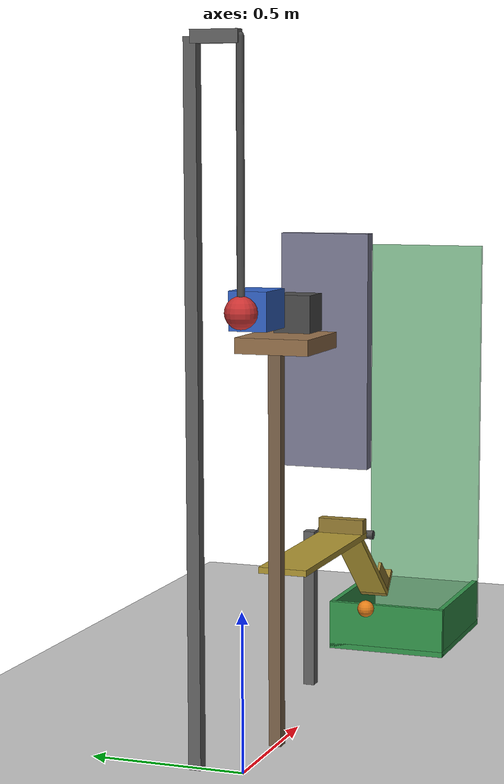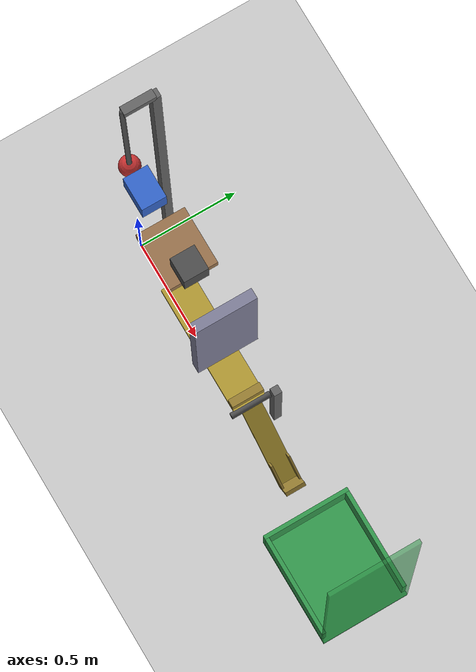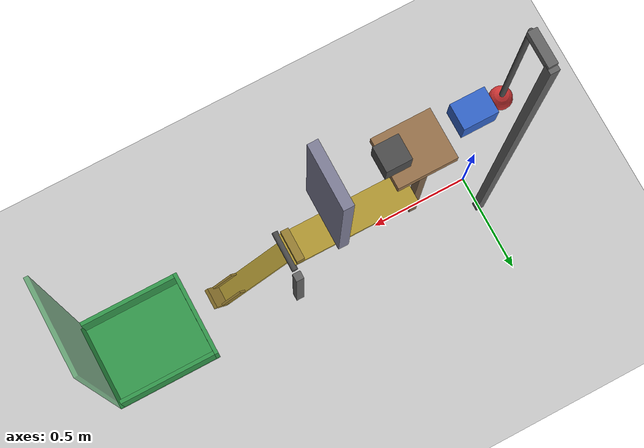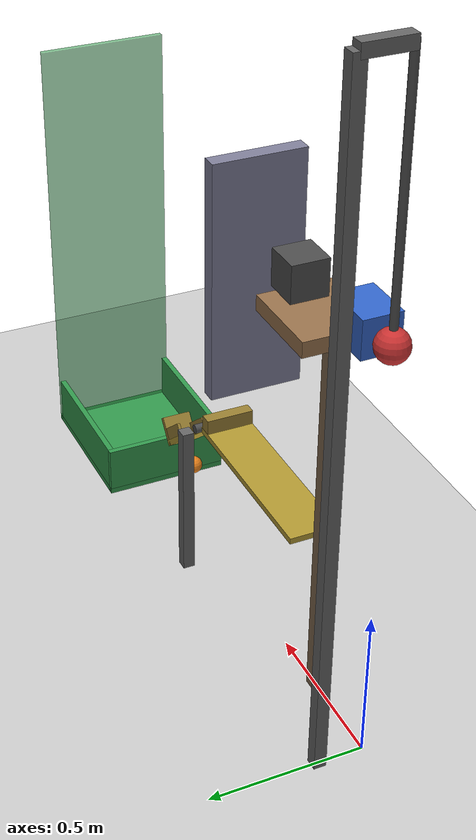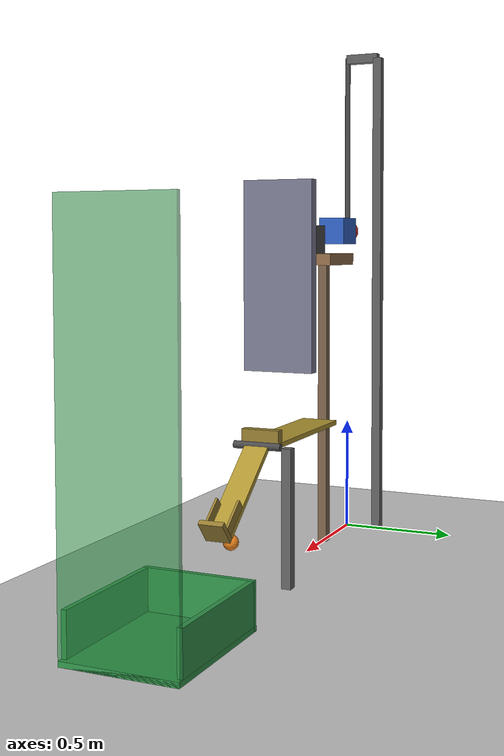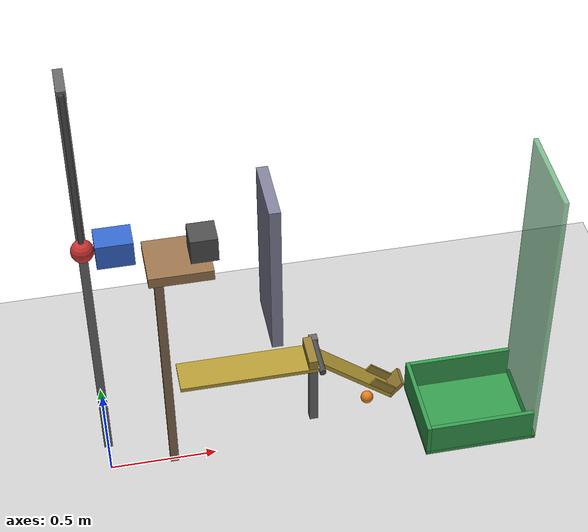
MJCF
<mujoco model="pendulum_cart_seesaw_cup">
  <compiler angle="radian"/>
  <option timestep="0.002" gravity="0 0 -9.81"/>

  <worldbody>
    <light name="sun" pos="1 -2 4" dir="0 0.5 -1" directional="true"/>
    <geom name="floor" type="plane" pos="0 0 0" size="5 5 0.1" rgba="0.8 0.8 0.8 1"/>

    <!-- pendulum support (visual only) -->
    <geom name="pend_post" type="box" pos="0 0.15 1.1" size="0.02 0.02 1.1" contype="0" conaffinity="0" rgba="0.4 0.4 0.4 1"/>
    <geom name="pend_beam" type="box" pos="0 0.075 2.2" size="0.02 0.075 0.02" contype="0" conaffinity="0" rgba="0.4 0.4 0.4 1"/>

    <!-- shelf holding the weight -->
    <geom name="shelf" type="box" pos="0.39 0 1.275" size="0.14 0.12 0.025" friction="0.5 0.005 0.0001" rgba="0.6 0.45 0.3 1"/>
    <geom name="shelf_post" type="box" pos="0.30 0 0.625" size="0.02 0.02 0.625" contype="0" conaffinity="0" rgba="0.5 0.4 0.3 1"/>

    <!-- wall that stops the weight so it drops onto the seesaw -->
    <geom name="weight_stop" type="box" pos="0.785 0 1.21" size="0.025 0.15 0.39" rgba="0.5 0.5 0.6 1"/>

    <!-- seesaw pivot support (visual only) -->
    <geom name="seesaw_post" type="box" pos="1.0 0.13 0.275" size="0.02 0.02 0.275" contype="0" conaffinity="0" rgba="0.4 0.4 0.4 1"/>

    <body name="pendulum" pos="0 0 2.2">
      <joint name="pendulum_hinge" type="hinge" pos="0 0 0" axis="0 1 0"/>
      <geom name="pendulum_rod" type="capsule" fromto="0 0 0 0 0 -0.75" size="0.012" mass="0.05" contype="0" conaffinity="0" rgba="0.3 0.3 0.3 1"/>
      <geom name="pendulum_bob" type="sphere" pos="0 0 -0.8" size="0.05" mass="1.0" rgba="0.8 0.2 0.2 1"/>
    </body>

    <body name="cart" pos="0.13 0 1.4">
      <joint name="cart_slide" type="slide" axis="1 0 0" limited="true" range="0 0.34" solreflimit="0.005 1"/>
      <geom name="cart_box" type="box" size="0.08 0.06 0.06" mass="1.0" rgba="0.2 0.4 0.8 1"/>
    </body>

    <body name="weight" pos="0.5 0 1.36">
      <freejoint name="weight_free"/>
      <geom name="weight_box" type="box" size="0.06 0.06 0.06" mass="1.0" friction="0.5 0.005 0.0001" rgba="0.3 0.3 0.3 1"/>
    </body>

    <body name="seesaw" pos="1.0 0 0.55">
      <joint name="seesaw_hinge" type="hinge" pos="0 0 0" axis="0 1 0" limited="true" range="0 0.35" solreflimit="0.005 1"/>
      <geom name="seesaw_plank" type="box" pos="-0.325 0 0" size="0.325 0.08 0.01" mass="0.06" rgba="0.7 0.6 0.2 1"/>
      <geom name="seesaw_bump" type="box" pos="-0.04 0 0.035" size="0.02 0.08 0.025" mass="0.01" rgba="0.6 0.5 0.2 1"/>
      <geom name="seesaw_arm" type="box" pos="0.17236 0 -0.144627" size="0.225 0.05 0.01" euler="0 0.698132 0" mass="0.12" rgba="0.7 0.6 0.2 1"/>
      <geom name="seesaw_endwall" type="box" pos="0.362771 0 -0.252185" size="0.01 0.05 0.05" euler="0 0.698132 0" mass="0.02" rgba="0.6 0.5 0.2 1"/>
      <geom name="seesaw_rail_l" type="box" pos="0.29889 0.045 -0.211637" size="0.065 0.005 0.02" euler="0 0.698132 0" mass="0.01" rgba="0.6 0.5 0.2 1"/>
      <geom name="seesaw_rail_r" type="box" pos="0.29889 -0.045 -0.211637" size="0.065 0.005 0.02" euler="0 0.698132 0" mass="0.01" rgba="0.6 0.5 0.2 1"/>
      <geom name="seesaw_axle" type="cylinder" pos="0 0 0" size="0.015 0.1" euler="1.5708 0 0" mass="0.01" contype="0" conaffinity="0" rgba="0.3 0.3 0.3 1"/>
    </body>

    <body name="ball" pos="1.2351 0 0.2261">
      <freejoint name="ball_free"/>
      <geom name="ball_geom" type="sphere" size="0.03" mass="0.03" condim="6" friction="0.8 0.01 0.005" rgba="0.9 0.5 0.1 1"/>
    </body>

    <body name="cup" pos="1.75 0 0">
      <geom name="cup_floor" type="box" pos="0 0 0.01" size="0.27 0.22 0.01" rgba="0.2 0.6 0.3 1"/>
      <geom name="cup_front" type="box" pos="-0.26 0 0.09" size="0.01 0.22 0.09" rgba="0.2 0.6 0.3 1"/>
      <geom name="cup_back" type="box" pos="0.26 0 0.75" size="0.01 0.22 0.75" rgba="0.2 0.6 0.3 0.6"/>
      <geom name="cup_side_l" type="box" pos="0 0.21 0.10" size="0.25 0.01 0.08" rgba="0.2 0.6 0.3 1"/>
      <geom name="cup_side_r" type="box" pos="0 -0.21 0.10" size="0.25 0.01 0.08" rgba="0.2 0.6 0.3 1"/>
    </body>
  </worldbody>

  <keyframe>
    <key name="start" qpos="1.3181 0 0.5 0 1.36 1 0 0 0 0.35 1.2351 0 0.2261 1 0 0 0"/>
  </keyframe>
</mujoco>
